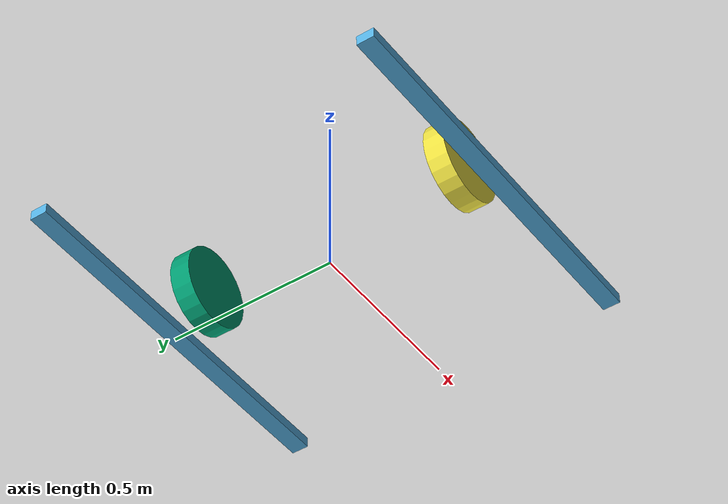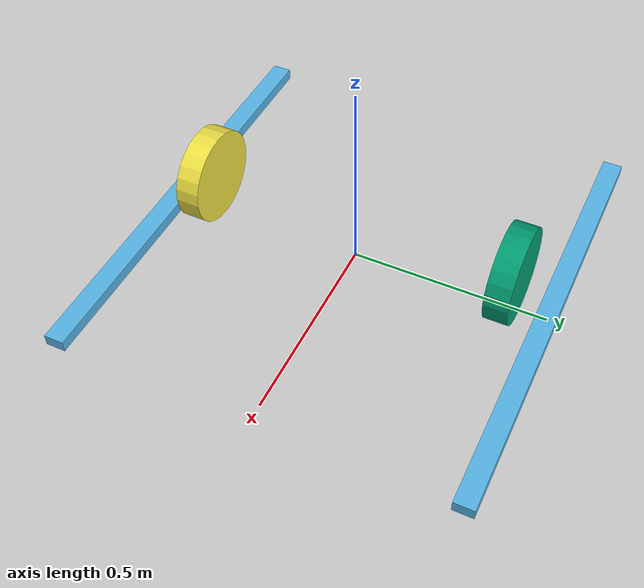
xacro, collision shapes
<?xml version="1.0"?>
<robot name="rovo_2w" xmlns:xacro="http://www.ros.org/wiki/xacro">

  <!-- Paths injected from launch -->
  <xacro:arg name="controllers_yaml" default=""/>
  <xacro:arg name="mesh_file"  default="package://rovo_ur_description/meshes/rovo.dae"/>
  <xacro:arg name="mesh_scale" default="1 1 1"/>
  <xacro:arg name="mesh_xyz"   default="0 0.07 0.28"/>
  <xacro:arg name="mesh_rpy"   default="-1.57079632679 0 1.57079632679"/>

  <!-- Two-wheel (skid/diff) params -->
  <xacro:property name="wheel_separation" value="0.80"/>
  <xacro:property name="wheel_radius"     value="0.12"/>
  <xacro:property name="wheel_width"      value="0.06"/>
  <xacro:property name="wheel_x"          value="0.00"/>
  <xacro:property name="wheel_z"          value="0.12"/>

  <!-- Base collision shape and mass -->
  <xacro:property name="col_l" value="1.4"/>
  <xacro:property name="col_w" value="1.3"/>
  <xacro:property name="col_h" value="2.0"/>
  <xacro:property name="base_mass" value="60.0"/>

  <!-- helpers -->
  <xacro:property name="b"  value="${wheel_separation}"/>
  <xacro:property name="r"  value="${wheel_radius}"/>
  <xacro:property name="ww" value="${wheel_width}"/>
  <xacro:property name="wx" value="${wheel_x}"/>
  <xacro:property name="wz" value="${wheel_z}"/>

  <!-- Massless root -->
  <link name="base_footprint"/>
  <joint name="base_footprint_to_base_link" type="fixed">
    <parent link="base_footprint"/>
    <child  link="base_link"/>
  </joint>

  <!-- Base link -->
  <link name="base_link">
    <visual>
      <geometry><mesh filename="$(arg mesh_file)" scale="$(arg mesh_scale)"/></geometry>
      <origin xyz="$(arg mesh_xyz)" rpy="$(arg mesh_rpy)"/>
    </visual>

    <collision name="left_track_skid">
      <origin xyz="0 ${b/2.0 +0.1} 0.02" rpy="0 0 0"/>
      <geometry>
        <box size="${col_l*0.8} 0.05 0.03"/> </geometry>
    </collision>

    <collision name="right_track_skid">
      <origin xyz="0 ${-b/2.0 - 0.1} 0.02" rpy="0 0 0"/>
      <geometry>
        <box size="${col_l*0.8} 0.05 0.03"/> </geometry>
    </collision>

    <inertial>
      <mass value="${base_mass}"/>
      <origin xyz="0 0 ${col_h/2}"/>
      <inertia
        ixx="${(1.0/12.0)*base_mass*(col_h*col_h + col_w*col_w)}"
        iyy="${(1.0/12.0)*base_mass*(col_l*col_l + col_h*col_h)}"
        izz="${(1.0/12.0)*base_mass*(col_l*col_l + col_w*col_w)}"
        ixy="0" ixz="0" iyz="0"/>
    </inertial>
  </link>

  <!-- left wheel -->
  <link name="left_wheel_link">
    <visual>
      <geometry><cylinder length="${ww}" radius="${r}"/></geometry>
      <origin xyz="0 0 0" rpy="1.57079632679 0 0"/>
    </visual>
    <collision>
      <geometry><cylinder length="${ww}" radius="${r}"/></geometry>
      <origin xyz="0 0 0" rpy="1.57079632679 0 0"/>
    </collision>
    <inertial>
      <mass value="3.0"/>
      <origin xyz="0 0 0"/>
      <inertia ixx="0.02" iyy="0.02" izz="0.01" ixy="0" ixz="0" iyz="0"/>
    </inertial>
  </link>
  <joint name="left_wheel_joint" type="continuous">
    <parent link="base_link"/><child link="left_wheel_link"/>
    <origin xyz="${wx} ${b/2.0} ${wz}" rpy="0 0 0"/>
    <axis xyz="0 1 0"/>
    <dynamics damping="0.02" friction="0.0"/>
  </joint>

  <!-- right wheel -->
  <link name="right_wheel_link">
    <visual>
      <geometry><cylinder length="${ww}" radius="${r}"/></geometry>
      <origin xyz="0 0 0" rpy="1.57079632679 0 0"/>
    </visual>
    <collision>
      <geometry><cylinder length="${ww}" radius="${r}"/></geometry>
      <origin xyz="0 0 0" rpy="1.57079632679 0 0"/>
    </collision>
    <inertial>
      <mass value="3.0"/>
      <origin xyz="0 0 0"/>
      <inertia ixx="0.02" iyy="0.02" izz="0.01" ixy="0" ixz="0" iyz="0"/>
    </inertial>
  </link>
  <joint name="right_wheel_joint" type="continuous">
    <parent link="base_link"/><child link="right_wheel_link"/>
    <origin xyz="${wx} ${-b/2.0} ${wz}" rpy="0 0 0"/>
    <axis xyz="0 1 0"/>
    <dynamics damping="0.02" friction="0.0"/>
  </joint>

    <!-- Front SICK microScan3 -->
  <link name="micro_scan_link"/>

  <joint name="micro_scan_joint" type="fixed">
    <parent link="base_link"/>
    <child  link="micro_scan_link"/>
    <!-- xyz in meters, rpy in radians -->
    <!-- Example: 0.40 m in front of base_link origin, 0.30 m high -->
    <origin xyz="0.40 0.00 0.30" rpy="0 0 0"/>
  </joint>

  <!-- Rear SICK nanoScan3 -->
  <link name="nano_scan_link"/>

  <joint name="nano_scan_joint" type="fixed">
    <parent link="base_link"/>
    <child  link="nano_scan_link"/>
    <!-- Example: 0.40 m behind base_link origin, same height, facing backwards -->
    <origin xyz="-0.40 0.00 0.30" rpy="0 0 3.14159"/>
  </joint>

  <!-- ros2_control: gz-sim system -->
  <ros2_control name="rovo_system" type="system">
    <hardware>
      <plugin>gz_ros2_control/GazeboSimSystem</plugin>
    </hardware>
    <joint name="left_wheel_joint">
      <command_interface name="velocity"/>
      <state_interface   name="position"/>
      <state_interface   name="velocity"/>
    </joint>
    <joint name="right_wheel_joint">
      <command_interface name="velocity"/>
      <state_interface   name="position"/>
      <state_interface   name="velocity"/>
    </joint>
  </ros2_control>

  <!-- GZ system plugin: starts controller_manager inside gz and loads controllers.yaml -->
  <gazebo>
    <plugin filename="libgz_ros2_control-system.so"
            name="gz_ros2_control::GazeboSimROS2ControlPlugin">
      <parameters>$(arg controllers_yaml)</parameters>
      <controller_manager_prefix_node_name>controller_manager</controller_manager_prefix_node_name>
    </plugin>
  </gazebo>

  <gazebo reference="left_track_skid">
      <mu1>2.0</mu1>    <mu2>0.05</mu2>   <fdir1>1 0 0</fdir1> </gazebo>

    <gazebo reference="right_track_skid">
      <mu1>1.5</mu1>
      <mu2>0.05</mu2>
      <fdir1>1 0 0</fdir1>
    </gazebo>

</robot>
